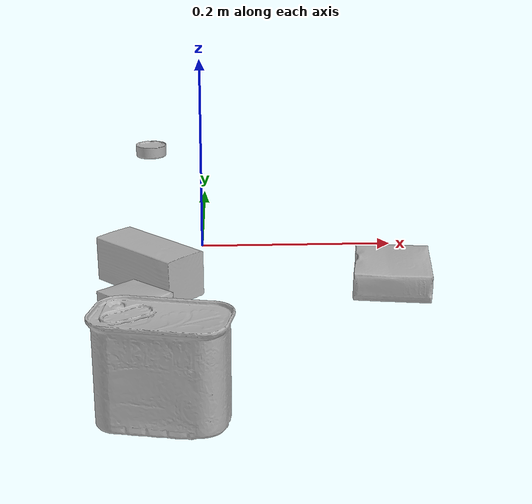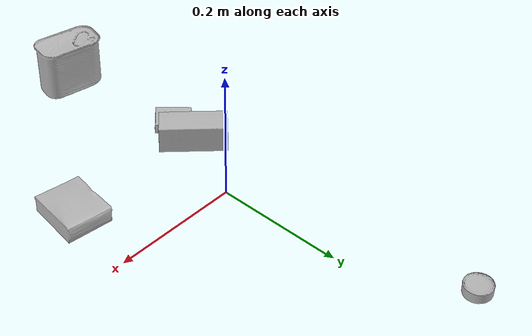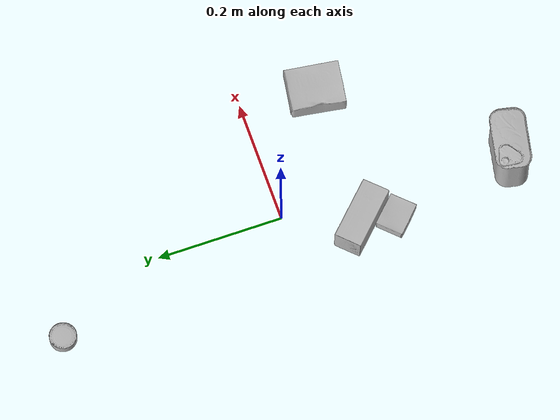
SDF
<sdf version="1.4">
  <world name="default">
    <light name="light1" type="point">
      <pose>0 0 1 0 0 0</pose>
      <diffuse>3 3 3 1</diffuse>
      <specular>3 3 3 1</specular>
    </light>
    <light name="light2" type="point">
      <pose>0 0.5 2 0 0 0</pose>
      <diffuse>1 1 1 1</diffuse>
      <specular>1 1 1 1</specular>
    </light>
    <light name="light3" type="point">
      <pose>0 0.5 2 0 0 0</pose>
      <diffuse>3 3 3 1</diffuse>
      <specular>3 3 3 1</specular>
    </light>
    <scene>
      <ambient>0.7 0.7 0.7</ambient>
    </scene>
    <model name="box1">
      <link name="link_box1">
        <collision name="default">
          <geometry>
            <mesh>
              <uri>model://pudding_box/collision_meshes/collision.obj</uri>
              <scale>0.5 0.5 0.5</scale>
            </mesh>
          </geometry>
          <surface>
            <friction>
              <ode>
                <mu>0.5</mu>
                <mu2>0.5</mu2>
              </ode>
            </friction>
          <contact>
        <ode>
            <max_vel>0</max_vel>
            <min_depth>0.0001</min_depth>
            <kp>1e8</kp>
        </ode>
    </contact></surface>
        </collision>
        <visual name="default">
          <geometry>
            <mesh>
              <uri>model://pudding_box/visual_meshes/visual.dae</uri>
              <scale>0.5 0.5 0.5</scale>
            </mesh>
          </geometry>
        </visual>
        <inertial>
          <mass>0.037190694361925125</mass>
          <pose>0.00024474109522998333 0.00040339428232982755 -0.0002594413817860186 0.005213101817299687 -0.0066037968510836995 0.02007982330137587</pose>
          <inertia>
            <ixx>1.0510541e-05</ixx>
            <iyy>7.071568e-06</iyy>
            <izz>1.552156e-05</izz>
            <ixy>0</ixy>
            <ixz>0</ixz>
            <iyz>0</iyz>
          </inertia>
        </inertial>
      </link>
      <pose>-0.05801127851009369 -0.16730237007141113 0.009862905368208885 0.02234960841320745 -0.011390987363249658 -2.359887147591287</pose>
    </model>
    <model name="box2">
      <link name="link_box2">
        <collision name="default">
          <geometry>
            <mesh>
              <uri>model://gelatin_box/collision_meshes/collision.obj</uri>
              <scale>1.0 1.0 1.0</scale>
            </mesh>
          </geometry>
          <surface>
            <friction>
              <ode>
                <mu>0.5</mu>
                <mu2>0.5</mu2>
              </ode>
            </friction>
          <contact>
        <ode>
            <max_vel>0</max_vel>
            <min_depth>0.0001</min_depth>
            <kp>1e8</kp>
        </ode>
    </contact></surface>
        </collision>
        <visual name="default">
          <geometry>
            <mesh>
              <uri>model://gelatin_box/visual_meshes/visual.dae</uri>
              <scale>1.0 1.0 1.0</scale>
            </mesh>
          </geometry>
        </visual>
        <inertial>
          <mass>0.11744645982980728</mass>
          <pose>0.0004319618456065655 0.00011156871914863586 -0.0003640321083366871 -0.001050371865231848 -0.004755818223747806 0.01644056319675078</pose>
          <inertia>
            <ixx>8.290762e-05</ixx>
            <iyy>5.9220478e-05</iyy>
            <izz>0.00012620387</izz>
            <ixy>0</ixy>
            <ixz>0</ixz>
            <iyz>0</iyz>
          </inertia>
        </inertial>
      </link>
      <pose>0.18333421647548676 -0.11894235014915466 0.015168316662311554 0.005597515510370022 -0.007304542113322667 2.9862953952869433</pose>
    </model>
    <model name="box3">
      <link name="link_box3">
        <collision name="default">
          <geometry>
            <mesh>
              <uri>model://wood_block/collision_meshes/collision.obj</uri>
              <scale>0.5 0.5 0.5</scale>
            </mesh>
          </geometry>
          <surface>
            <friction>
              <ode>
                <mu>0.5</mu>
                <mu2>0.5</mu2>
              </ode>
            </friction>
          <contact>
        <ode>
            <max_vel>0</max_vel>
            <min_depth>0.0001</min_depth>
            <kp>1e8</kp>
        </ode>
    </contact></surface>
        </collision>
        <visual name="default">
          <geometry>
            <mesh>
              <uri>model://wood_block/visual_meshes/visual.dae</uri>
              <scale>0.5 0.5 0.5</scale>
            </mesh>
          </geometry>
        </visual>
        <inertial>
          <mass>0.2439567744731903</mass>
          <pose>-2.906657982748584e-06 -0.00028540476341731846 0.00013204292918089777 -0.05220841280222248 -0.00519269633387802 -0.006861376952924709</pose>
          <inertia>
            <ixx>8.161277e-05</ixx>
            <iyy>0.00025781477</iyy>
            <izz>0.0002568504</izz>
            <ixy>0</ixy>
            <ixz>0</ixz>
            <iyz>0</iyz>
          </inertia>
        </inertial>
      </link>
      <pose>-0.04818369075655937 -0.1138899028301239 0.022629255428910255 -0.005208319330967142 0.005718770976260405 2.359071136799784</pose>
    </model>
    <model name="can1">
      <link name="link_can1">
        <collision name="default">
          <geometry>
            <mesh>
              <uri>model://tuna_fish_can/collision_meshes/collision.obj</uri>
              <scale>0.5 0.5 0.5</scale>
            </mesh>
          </geometry>
          <surface>
            <friction>
              <ode>
                <mu>0.5</mu>
                <mu2>0.5</mu2>
              </ode>
            </friction>
          <contact>
        <ode>
            <max_vel>0</max_vel>
            <min_depth>0.0001</min_depth>
            <kp>1e8</kp>
        </ode>
    </contact></surface>
        </collision>
        <visual name="default">
          <geometry>
            <mesh>
              <uri>model://tuna_fish_can/visual_meshes/visual.dae</uri>
              <scale>0.5 0.5 0.5</scale>
            </mesh>
          </geometry>
        </visual>
        <inertial>
          <mass>0.02880808152258396</mass>
          <pose>-2.036173827946186e-05 -7.256211574713234e-06 -0.0005269025568850338 -0.0017944794030227106 0.00017162104037918286 0.24054189207372795</pose>
          <inertia>
            <ixx>3.894896e-06</ixx>
            <iyy>3.878662e-06</iyy>
            <izz>6.6647226e-06</izz>
            <ixy>0</ixy>
            <ixz>0</ixz>
            <iyz>0</iyz>
          </inertia>
        </inertial>
      </link>
      <pose>-0.07831650972366333 0.37843531370162964 0.008520002476871014 -2.7745739435147697e-08 2.038138202947086e-08 -2.365050900039265</pose>
    </model>
    <model name="can2">
      <link name="link_can2">
        <collision name="default">
          <geometry>
            <mesh>
              <uri>model://potted_meat_can/collision_meshes/collision.obj</uri>
              <scale>1.0 1.0 1.0</scale>
            </mesh>
          </geometry>
          <surface>
            <friction>
              <ode>
                <mu>0.5</mu>
                <mu2>0.5</mu2>
              </ode>
            </friction>
          <contact>
        <ode>
            <max_vel>0</max_vel>
            <min_depth>0.0001</min_depth>
            <kp>1e8</kp>
        </ode>
    </contact></surface>
        </collision>
        <visual name="default">
          <geometry>
            <mesh>
              <uri>model://potted_meat_can/visual_meshes/visual.dae</uri>
              <scale>1.0 1.0 1.0</scale>
            </mesh>
          </geometry>
        </visual>
        <inertial>
          <mass>0.21485549211502075</mass>
          <pose>0.00022888135572429746 -5.989110650261864e-05 -0.0006367442547343671 -0.028093358319385277 -0.007232601893117688 0.015406275523281094</pose>
          <inertia>
            <ixx>0.00027638907</ixx>
            <iyy>0.00016792737</iyy>
            <izz>0.00020102048</izz>
            <ixy>0</ixy>
            <ixz>0</ixz>
            <iyz>0</iyz>
          </inertia>
        </inertial>
      </link>
      <pose>-0.02191154845058918 -0.36448875069618225 0.042128004133701324 -5.8535667209072486e-08 -5.752712995880273e-07 -1.7885490637904193</pose>
    </model>
  <physics type="ode">
      <max_contacts>50</max_contacts>
      <ode>
        <solver>
          <type>quick</type>
          <iters>75</iters>
        </solver>
        <constraints>
          <contact_max_correcting_vel>0</contact_max_correcting_vel>
          <contact_surface_layer>0</contact_surface_layer>
        </constraints>
      </ode>
    </physics></world>
</sdf>
